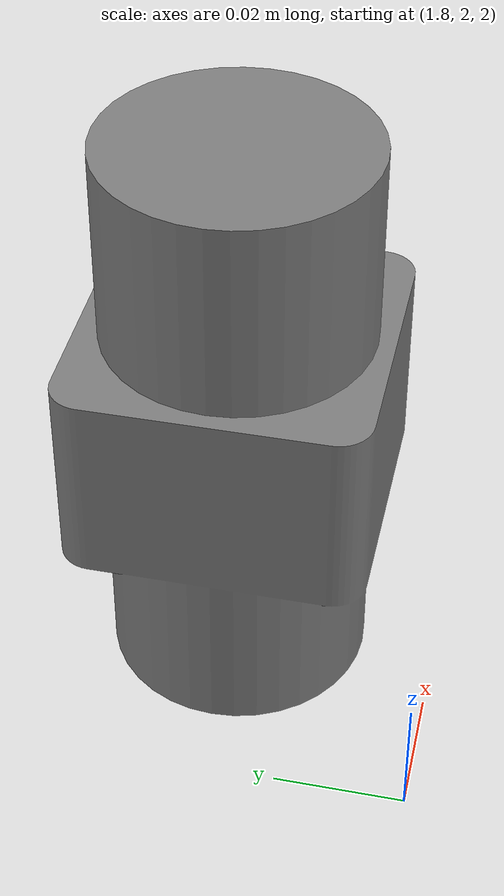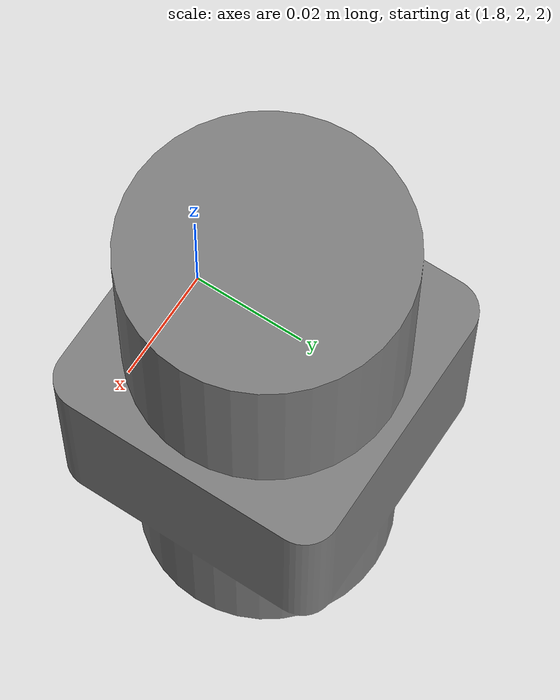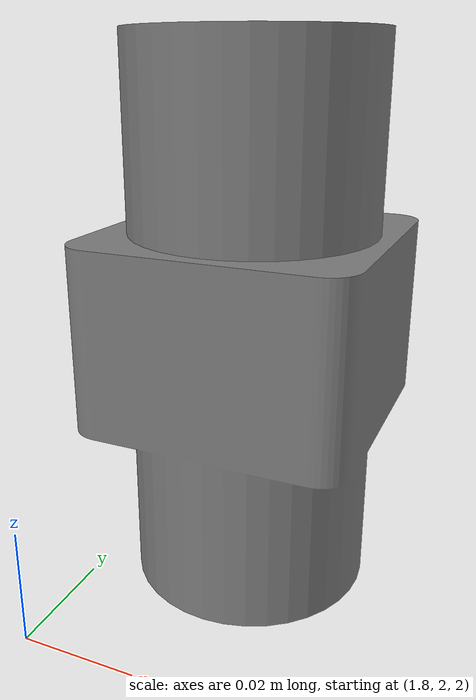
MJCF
<mujoco model="BolzenGross">
  <asset>
    <mesh file="../../../../../assets/cranfield_assembly_benchmark/assets/BolzenGross/BolzenGross.stl" scale="0.001 0.001 0.001" >
      <plugin instance="sdf" />
    </mesh>
  </asset>
  <worldbody>
    <body name="BolzenGross" pos="2 2 2">
      <freejoint/>
      <geom type="mesh" mesh="BolzenGross">
        <plugin instance="sdf" />
      </geom>
    </body>
  </worldbody>
</mujoco>
